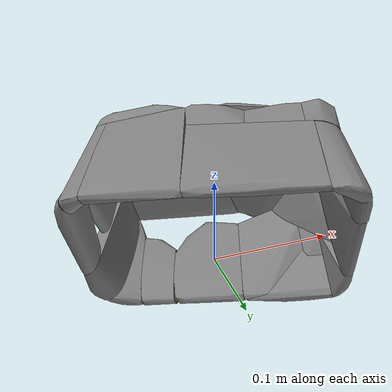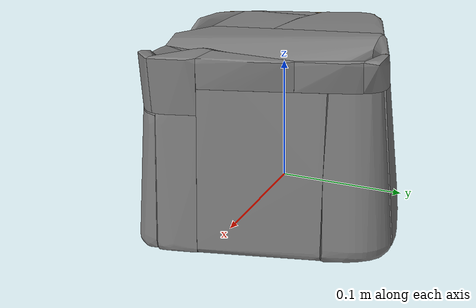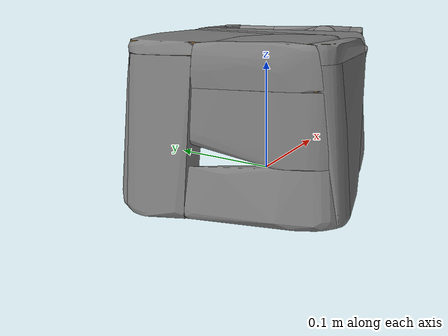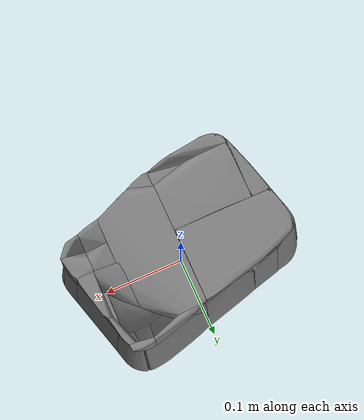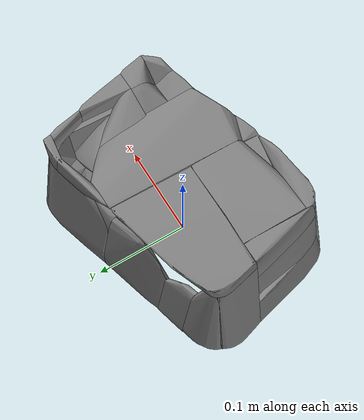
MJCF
<mujoco model="basket">
  <asset>
    <material name="basket_mat" rgba="0.55 0.4 0.2 1" specular="0.3" shininess="0.1"/>
    <mesh name="basket_vis" file="basket_libero.obj" scale="1 1 1"/>
    <mesh name="basket_col_0" file="basket_col_0.obj" scale="1 1 1"/>
    <mesh name="basket_col_1" file="basket_col_1.obj" scale="1 1 1"/>
    <mesh name="basket_col_2" file="basket_col_2.obj" scale="1 1 1"/>
    <mesh name="basket_col_3" file="basket_col_3.obj" scale="1 1 1"/>
    <mesh name="basket_col_4" file="basket_col_4.obj" scale="1 1 1"/>
    <mesh name="basket_col_5" file="basket_col_5.obj" scale="1 1 1"/>
    <mesh name="basket_col_6" file="basket_col_6.obj" scale="1 1 1"/>
    <mesh name="basket_col_7" file="basket_col_7.obj" scale="1 1 1"/>
    <mesh name="basket_col_8" file="basket_col_8.obj" scale="1 1 1"/>
    <mesh name="basket_col_9" file="basket_col_9.obj" scale="1 1 1"/>
    <mesh name="basket_col_10" file="basket_col_10.obj" scale="1 1 1"/>
    <mesh name="basket_col_11" file="basket_col_11.obj" scale="1 1 1"/>
    <mesh name="basket_col_12" file="basket_col_12.obj" scale="1 1 1"/>
    <mesh name="basket_col_13" file="basket_col_13.obj" scale="1 1 1"/>
    <mesh name="basket_col_14" file="basket_col_14.obj" scale="1 1 1"/>
    <mesh name="basket_col_15" file="basket_col_15.obj" scale="1 1 1"/>
    <mesh name="basket_col_16" file="basket_col_16.obj" scale="1 1 1"/>
    <mesh name="basket_col_17" file="basket_col_17.obj" scale="1 1 1"/>
    <mesh name="basket_col_18" file="basket_col_18.obj" scale="1 1 1"/>
    <mesh name="basket_col_19" file="basket_col_19.obj" scale="1 1 1"/>
    <mesh name="basket_col_20" file="basket_col_20.obj" scale="1 1 1"/>
    <mesh name="basket_col_21" file="basket_col_21.obj" scale="1 1 1"/>
    <mesh name="basket_col_22" file="basket_col_22.obj" scale="1 1 1"/>
    <mesh name="basket_col_23" file="basket_col_23.obj" scale="1 1 1"/>
    <mesh name="basket_col_24" file="basket_col_24.obj" scale="1 1 1"/>
    <mesh name="basket_col_25" file="basket_col_25.obj" scale="1 1 1"/>
    <mesh name="basket_col_26" file="basket_col_26.obj" scale="1 1 1"/>
    <mesh name="basket_col_27" file="basket_col_27.obj" scale="1 1 1"/>
    <mesh name="basket_col_28" file="basket_col_28.obj" scale="1 1 1"/>
    <mesh name="basket_col_29" file="basket_col_29.obj" scale="1 1 1"/>
    <mesh name="basket_col_30" file="basket_col_30.obj" scale="1 1 1"/>
    <mesh name="basket_col_31" file="basket_col_31.obj" scale="1 1 1"/>
  </asset>
  <worldbody>
    <body>
      <body name="object">
        <geom type="mesh" mesh="basket_vis" material="basket_mat" group="1" contype="0" conaffinity="0"/>
        <geom type="mesh" mesh="basket_col_0" group="0" density="100" friction="0.95 0.3 0.1" solimp="0.998 0.998 0.001" solref="0.001 1"/>
        <geom type="mesh" mesh="basket_col_1" group="0" density="100" friction="0.95 0.3 0.1" solimp="0.998 0.998 0.001" solref="0.001 1"/>
        <geom type="mesh" mesh="basket_col_2" group="0" density="100" friction="0.95 0.3 0.1" solimp="0.998 0.998 0.001" solref="0.001 1"/>
        <geom type="mesh" mesh="basket_col_3" group="0" density="100" friction="0.95 0.3 0.1" solimp="0.998 0.998 0.001" solref="0.001 1"/>
        <geom type="mesh" mesh="basket_col_4" group="0" density="100" friction="0.95 0.3 0.1" solimp="0.998 0.998 0.001" solref="0.001 1"/>
        <geom type="mesh" mesh="basket_col_5" group="0" density="100" friction="0.95 0.3 0.1" solimp="0.998 0.998 0.001" solref="0.001 1"/>
        <geom type="mesh" mesh="basket_col_6" group="0" density="100" friction="0.95 0.3 0.1" solimp="0.998 0.998 0.001" solref="0.001 1"/>
        <geom type="mesh" mesh="basket_col_7" group="0" density="100" friction="0.95 0.3 0.1" solimp="0.998 0.998 0.001" solref="0.001 1"/>
        <geom type="mesh" mesh="basket_col_8" group="0" density="100" friction="0.95 0.3 0.1" solimp="0.998 0.998 0.001" solref="0.001 1"/>
        <geom type="mesh" mesh="basket_col_9" group="0" density="100" friction="0.95 0.3 0.1" solimp="0.998 0.998 0.001" solref="0.001 1"/>
        <geom type="mesh" mesh="basket_col_10" group="0" density="100" friction="0.95 0.3 0.1" solimp="0.998 0.998 0.001" solref="0.001 1"/>
        <geom type="mesh" mesh="basket_col_11" group="0" density="100" friction="0.95 0.3 0.1" solimp="0.998 0.998 0.001" solref="0.001 1"/>
        <geom type="mesh" mesh="basket_col_12" group="0" density="100" friction="0.95 0.3 0.1" solimp="0.998 0.998 0.001" solref="0.001 1"/>
        <geom type="mesh" mesh="basket_col_13" group="0" density="100" friction="0.95 0.3 0.1" solimp="0.998 0.998 0.001" solref="0.001 1"/>
        <geom type="mesh" mesh="basket_col_14" group="0" density="100" friction="0.95 0.3 0.1" solimp="0.998 0.998 0.001" solref="0.001 1"/>
        <geom type="mesh" mesh="basket_col_15" group="0" density="100" friction="0.95 0.3 0.1" solimp="0.998 0.998 0.001" solref="0.001 1"/>
        <geom type="mesh" mesh="basket_col_16" group="0" density="100" friction="0.95 0.3 0.1" solimp="0.998 0.998 0.001" solref="0.001 1"/>
        <geom type="mesh" mesh="basket_col_17" group="0" density="100" friction="0.95 0.3 0.1" solimp="0.998 0.998 0.001" solref="0.001 1"/>
        <geom type="mesh" mesh="basket_col_18" group="0" density="100" friction="0.95 0.3 0.1" solimp="0.998 0.998 0.001" solref="0.001 1"/>
        <geom type="mesh" mesh="basket_col_19" group="0" density="100" friction="0.95 0.3 0.1" solimp="0.998 0.998 0.001" solref="0.001 1"/>
        <geom type="mesh" mesh="basket_col_20" group="0" density="100" friction="0.95 0.3 0.1" solimp="0.998 0.998 0.001" solref="0.001 1"/>
        <geom type="mesh" mesh="basket_col_21" group="0" density="100" friction="0.95 0.3 0.1" solimp="0.998 0.998 0.001" solref="0.001 1"/>
        <geom type="mesh" mesh="basket_col_22" group="0" density="100" friction="0.95 0.3 0.1" solimp="0.998 0.998 0.001" solref="0.001 1"/>
        <geom type="mesh" mesh="basket_col_23" group="0" density="100" friction="0.95 0.3 0.1" solimp="0.998 0.998 0.001" solref="0.001 1"/>
        <geom type="mesh" mesh="basket_col_24" group="0" density="100" friction="0.95 0.3 0.1" solimp="0.998 0.998 0.001" solref="0.001 1"/>
        <geom type="mesh" mesh="basket_col_25" group="0" density="100" friction="0.95 0.3 0.1" solimp="0.998 0.998 0.001" solref="0.001 1"/>
        <geom type="mesh" mesh="basket_col_26" group="0" density="100" friction="0.95 0.3 0.1" solimp="0.998 0.998 0.001" solref="0.001 1"/>
        <geom type="mesh" mesh="basket_col_27" group="0" density="100" friction="0.95 0.3 0.1" solimp="0.998 0.998 0.001" solref="0.001 1"/>
        <geom type="mesh" mesh="basket_col_28" group="0" density="100" friction="0.95 0.3 0.1" solimp="0.998 0.998 0.001" solref="0.001 1"/>
        <geom type="mesh" mesh="basket_col_29" group="0" density="100" friction="0.95 0.3 0.1" solimp="0.998 0.998 0.001" solref="0.001 1"/>
        <geom type="mesh" mesh="basket_col_30" group="0" density="100" friction="0.95 0.3 0.1" solimp="0.998 0.998 0.001" solref="0.001 1"/>
        <geom type="mesh" mesh="basket_col_31" group="0" density="100" friction="0.95 0.3 0.1" solimp="0.998 0.998 0.001" solref="0.001 1"/>
      </body>
      <site rgba="0 0 0 0" size="0.005" pos="0 0 0" name="bottom_site"/>
      <site rgba="0 0 0 0" size="0.005" pos="0 0 0.12700" name="top_site"/>
      <site rgba="0 0 0 0" size="0.005" pos="0.14194 0 0" name="horizontal_radius_site"/>
      <site type="box" rgba="0 0 0 0" pos="0 0 0.06985" size="0.08516 0.06526 0.03810" name="contain_region"/>
    </body>
  </worldbody>
</mujoco>
